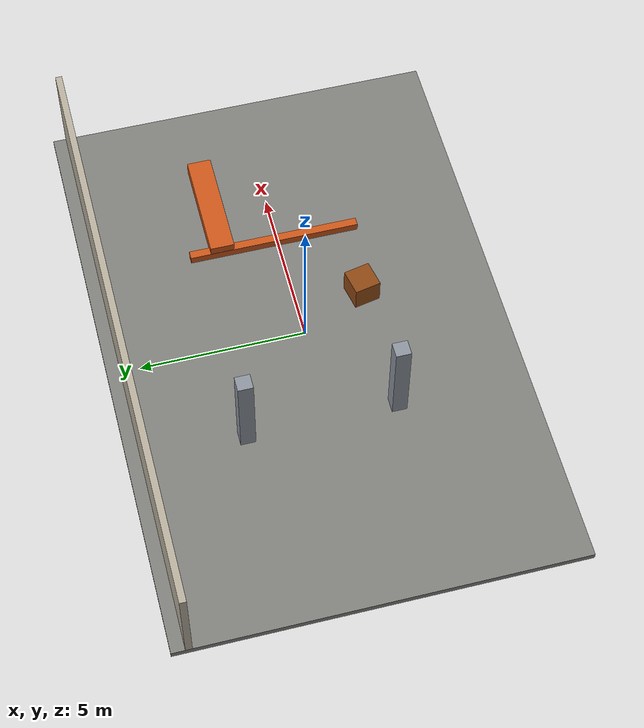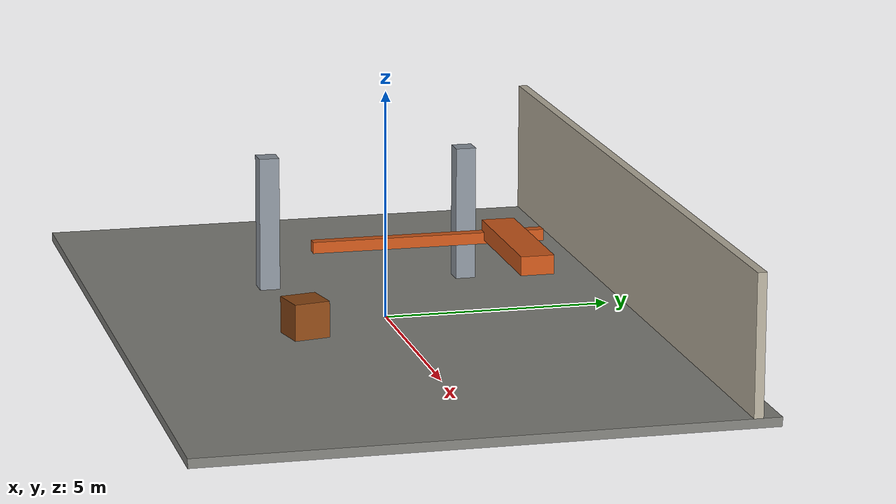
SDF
<?xml version="1.0"?>
<sdf version="1.10">
  <world name="deltaseek_ifc_nominal_demo">
    <physics name="default_physics" type="ignored">
      <max_step_size>0.003</max_step_size>
      <real_time_factor>1.0</real_time_factor>
    </physics>
    <plugin filename="gz-sim-physics-system" name="gz::sim::systems::Physics" />
    <plugin filename="gz-sim-user-commands-system" name="gz::sim::systems::UserCommands" />
    <plugin filename="gz-sim-scene-broadcaster-system" name="gz::sim::systems::SceneBroadcaster" />
    <plugin filename="gz-sim-sensors-system" name="gz::sim::systems::Sensors">
      <render_engine>ogre2</render_engine>
    </plugin>
    <plugin filename="gz-sim-imu-system" name="gz::sim::systems::Imu" />
    <gravity>0 0 -9.81</gravity>
    <scene>
      <ambient>0.55 0.55 0.55 1</ambient>
      <background>0.78 0.84 0.92 1</background>
      <shadows>false</shadows>
    </scene>
    <light type="directional" name="sun">
      <cast_shadows>false</cast_shadows>
      <pose>0 0 10 0 0 0</pose>
      <diffuse>0.9 0.9 0.9 1</diffuse>
      <direction>-0.4 0.2 -0.9</direction>
    </light>
    <model name="ifc_0fZ_MiOnzIshQgTqMC2x8T_36bd11d2">
      <static>true</static>
      <pose>3.5 2 2.35 0 0 0</pose>
      <link name="link">
        <collision name="collision">
          <geometry>
            <box>
              <size>3.2 0.7 0.4</size>
            </box>
          </geometry>
        </collision>
        <visual name="visual">
          <geometry>
            <box>
              <size>3.2 0.7 0.4</size>
            </box>
          </geometry>
          <material>
            <ambient>0.8 0.34 0.1 1</ambient>
            <diffuse>0.8 0.34 0.1 1</diffuse>
          </material>
        </visual>
      </link>
    </model>
    <model name="ifc_0tcngImXHTB9LROQcp5wi9_3675f4a1">
      <static>true</static>
      <pose>0 5.5 1.5 0 0 0</pose>
      <link name="link">
        <collision name="collision">
          <geometry>
            <box>
              <size>18 0.2 3</size>
            </box>
          </geometry>
        </collision>
        <visual name="visual">
          <geometry>
            <box>
              <size>18 0.2 3</size>
            </box>
          </geometry>
          <material>
            <ambient>0.72 0.69 0.62 1</ambient>
            <diffuse>0.72 0.69 0.62 1</diffuse>
          </material>
        </visual>
      </link>
    </model>
    <model name="ifc_1HpDGQbvzKeRG_mP1_QqzX_9cb5a086">
      <static>true</static>
      <pose>-3 -2 1.5 0 0 0</pose>
      <link name="link">
        <collision name="collision">
          <geometry>
            <box>
              <size>0.45 0.45 3</size>
            </box>
          </geometry>
        </collision>
        <visual name="visual">
          <geometry>
            <box>
              <size>0.45 0.45 3</size>
            </box>
          </geometry>
          <material>
            <ambient>0.55 0.58 0.62 1</ambient>
            <diffuse>0.55 0.58 0.62 1</diffuse>
          </material>
        </visual>
      </link>
    </model>
    <model name="ifc_1rU08iNtHNGgti2n2Tf0b6_def564ba">
      <static>true</static>
      <pose>-3 2.5 1.5 0 0 0</pose>
      <link name="link">
        <collision name="collision">
          <geometry>
            <box>
              <size>0.45 0.45 3</size>
            </box>
          </geometry>
        </collision>
        <visual name="visual">
          <geometry>
            <box>
              <size>0.45 0.45 3</size>
            </box>
          </geometry>
          <material>
            <ambient>0.55 0.58 0.62 1</ambient>
            <diffuse>0.55 0.58 0.62 1</diffuse>
          </material>
        </visual>
      </link>
    </model>
    <model name="ifc_28tbQOrQDP4flHeG2NHcXl_51d59407">
      <static>true</static>
      <pose>0 0 -0.1 0 0 0</pose>
      <link name="link">
        <collision name="collision">
          <geometry>
            <box>
              <size>18 12 0.2</size>
            </box>
          </geometry>
        </collision>
        <visual name="visual">
          <geometry>
            <box>
              <size>18 12 0.2</size>
            </box>
          </geometry>
          <material>
            <ambient>0.5 0.5 0.48 1</ambient>
            <diffuse>0.5 0.5 0.48 1</diffuse>
          </material>
        </visual>
      </link>
    </model>
    <model name="ifc_3pEp8vIzrQ48x8Cb1N6zbE_f32cbd53">
      <static>true</static>
      <pose>2 0.45 2.2 0 0 0</pose>
      <link name="link">
        <collision name="collision">
          <geometry>
            <box>
              <size>0.24 5 0.24</size>
            </box>
          </geometry>
        </collision>
        <visual name="visual">
          <geometry>
            <box>
              <size>0.24 5 0.24</size>
            </box>
          </geometry>
          <material>
            <ambient>0.8 0.34 0.1 1</ambient>
            <diffuse>0.8 0.34 0.1 1</diffuse>
          </material>
        </visual>
      </link>
    </model>
    <model name="ifc_unexpected_crate_01_905ed298">
      <static>true</static>
      <pose>1 -2 0.4 0 0 0.2</pose>
      <link name="link">
        <collision name="collision">
          <geometry>
            <box>
              <size>0.8 0.8 0.8</size>
            </box>
          </geometry>
        </collision>
        <visual name="visual">
          <geometry>
            <box>
              <size>0.8 0.8 0.8</size>
            </box>
          </geometry>
          <material>
            <ambient>0.55 0.28 0.08 1</ambient>
            <diffuse>0.55 0.28 0.08 1</diffuse>
          </material>
        </visual>
      </link>
    </model>
  </world>
</sdf>
